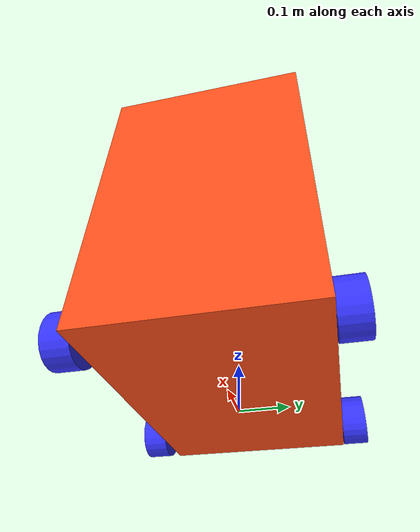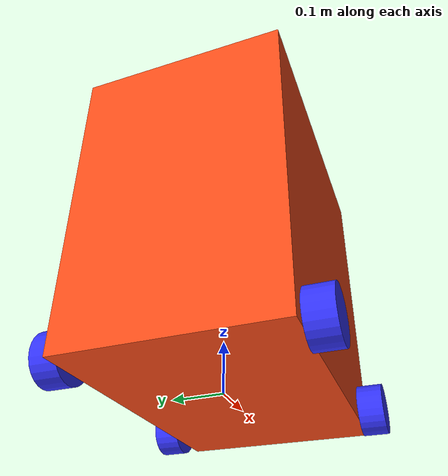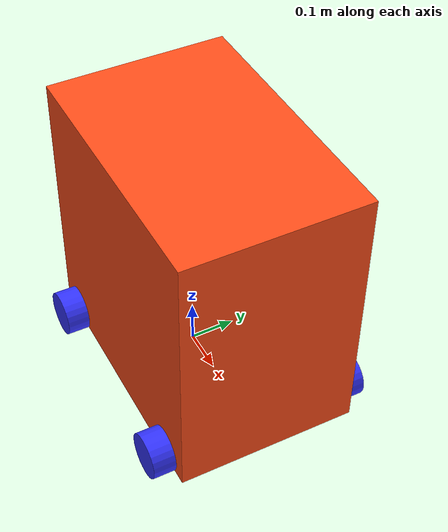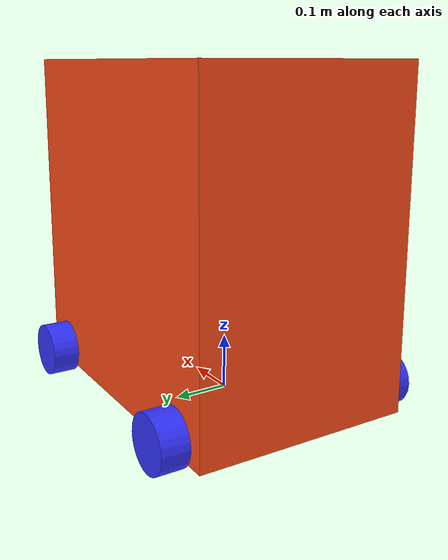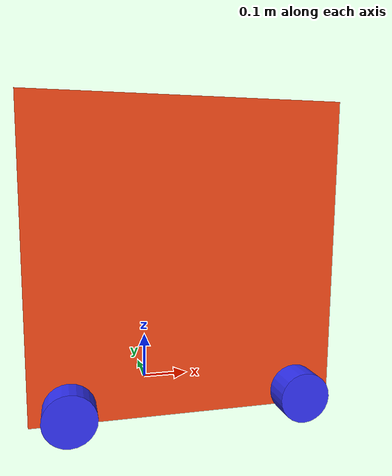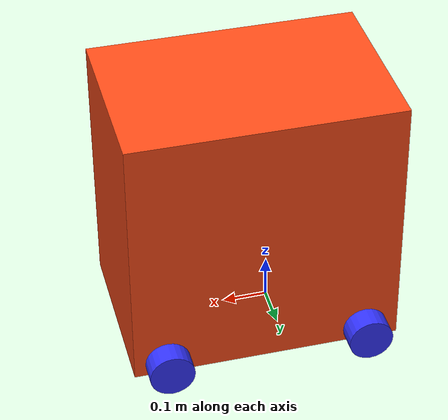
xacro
<?xml version="1.0"?>
<robot xmlns:xacro="http://www.ros.org/wiki/xacro" >

    <xacro:include filename="inertial_macros.xacro"/>

    <xacro:property name="chassis_length" value="0.6"/>
    <xacro:property name="chassis_width" value="0.4"/>
    <xacro:property name="chassis_height" value="0.6"/>
    <xacro:property name="chassis_mass" value="1.0"/>
    <xacro:property name="wheel_radius" value="0.05"/>
    <xacro:property name="wheel_thickness" value="0.05"/>
    <xacro:property name="wheel_mass" value="0.05"/>
    <xacro:property name="wheel_offset_x" value="0.25"/>
    <xacro:property name="wheel_offset_y" value="0.1485"/>
    <xacro:property name="wheel_offset_z" value="0"/>

  <material name="orange">
        <color rgba="1 0.3 0.1 1"/>
  </material>

   <material name="blue">
        <color rgba="0.2 0.2 1 1"/>
   </material>

    <material name="white">
        <color rgba="1 1 1 1"/>
    </material>

    <material name="black">
        <color rgba="0 0 0 1"/>
    </material>

   <material name="red">
        <color rgba="1 0 0 1"/>
    </material>

 <!-- BASE LINK -->

    <link name="base_link">

    </link>

    <!-- BASE_FOOTPRINT LINK -->

    <joint name="base_footprint_joint" type="fixed">
        <parent link="base_link"/>
        <child link="base_footprint"/>
        <origin xyz="0 0 0" rpy="0 0 0"/>
    </joint>

    <link name="base_footprint">
    </link>

    <!-- CHASSIS LINK -->

    <joint name="chassis_joint" type="fixed">
        <parent link="base_link"/>
        <child link="chassis"/>
        <origin xyz="${-wheel_offset_x} 0 ${-wheel_offset_z}"/>
    </joint>

    <link name="chassis">
        <visual>
            <origin xyz="${chassis_length/2} 0 ${chassis_height/2}"/>
            <geometry>
                <box size="${chassis_length} ${chassis_width} ${chassis_height}"/>
            </geometry>
            <material name="orange"/>
        </visual>
        <collision>
            <origin xyz="${chassis_length/2} 0 ${chassis_height/2}"/>
            <geometry>
                <box size="${chassis_length} ${chassis_width} ${chassis_height}"/>
            </geometry>
        </collision>
        <xacro:inertial_box mass="0.5" x="${chassis_length}" y="${chassis_width}" z="${chassis_height}">
            <origin xyz="${chassis_length/2} 0 ${chassis_height/2}" rpy="0 0 0"/>
        </xacro:inertial_box>
    </link>

    <gazebo reference="chassis">
        <material>Gazebo/Orange</material>
    </gazebo>

  <!-- Wheels -->
  <joint name="front_left_wheel_joint" type="continuous">
    <origin xyz="0.275 0.225 0.03" rpy="-${pi/2} 0 0"/>
    <parent link="base_link"/>
    <child link="front_left_wheel"/>
    <axis xyz="0 0 1"/>
  </joint>

  <link name="front_left_wheel">
    <visual>
      <geometry>
        <cylinder radius="0.05" length="0.05"/>
      </geometry>
      <material name="blue"/>
    </visual>
    <collision>
      <geometry>
        <cylinder radius="0.05" length="0.05"/>
      </geometry>
    </collision>
    <xacro:inertial_cylinder mass="0.1" length="0.05" radius="0.05">
        <origin xyz="0 0 0" rpy="0 0 0"/>
    </xacro:inertial_cylinder>
  </link>

  <gazebo reference="front_left_wheel">
    <material>Gazebo/Blue</material>
  </gazebo>

  <joint name="front_right_wheel_joint" type="continuous">
    <origin xyz="0.275 -0.225 0.03" rpy="${pi/2} 0 0"/>
    <parent link="base_link"/>
    <child link="front_right_wheel"/>
    <axis xyz="0 0 -1"/>
  </joint>

  <link name="front_right_wheel">
    <visual>
      <geometry>
        <cylinder radius="0.05" length="0.05"/>
      </geometry>
      <material name="blue"/>
    </visual>
    <collision>
      <geometry>
        <cylinder radius="0.05" length="0.05"/>
      </geometry>
    </collision>
       <xacro:inertial_cylinder mass="0.1" length="0.05" radius="0.05">
        <origin xyz="0 0 0" rpy="0 0 0"/>
    </xacro:inertial_cylinder>
  </link>

  <gazebo reference="front_right_wheel">
    <material>Gazebo/Blue</material>
  </gazebo>

  <joint name="rear_left_wheel_joint" type="continuous">
    <origin xyz="-0.175 0.225 0.03" rpy="-${pi/2} 0 0"/>
    <parent link="base_link"/>
    <child link="rear_left_wheel"/>
    <axis xyz="0 0 1"/>
  </joint>

  <link name="rear_left_wheel">
    <visual>
      <geometry>
        <cylinder radius="0.05" length="0.05"/>
      </geometry>
      <material name="blue"/>
    </visual>
    <collision>
      <geometry>
        <cylinder radius="0.05" length="0.05"/>
      </geometry>
    </collision>
    <xacro:inertial_cylinder mass="0.1" length="0.05" radius="0.05">
        <origin xyz="0 0 0" rpy="0 0 0"/>
    </xacro:inertial_cylinder>
  </link>

  <gazebo reference="rear_left_wheel">
    <material>Gazebo/Blue</material>
  </gazebo>

  <joint name="rear_right_wheel_joint" type="continuous">
    <origin xyz="-0.175 -0.225 0.03" rpy="${pi/2} 0 0"/>
    <parent link="base_link"/>
    <child link="rear_right_wheel"/>
    <axis xyz="0 0 -1"/>
  </joint>

  <link name="rear_right_wheel">
    <visual>
      <geometry>
        <cylinder radius="0.05" length="0.05"/>
      </geometry>
      <material name="blue"/>
    </visual>
    <collision>
      <geometry>
        <cylinder radius="0.05" length="0.05"/>
      </geometry>
    </collision>
    <xacro:inertial_cylinder mass="0.1" length="0.05" radius="0.05">
        <origin xyz="0 0 0" rpy="0 0 0"/>
    </xacro:inertial_cylinder>
  </link>

  <gazebo reference="rear_right_wheel">
    <material>Gazebo/Blue</material>
  </gazebo>

  <!-- Static Transformations -->
  <static_transform_publisher name="base_link_to_map" args="0 0 0 0 0 0 base_link map 100" />

</robot>
